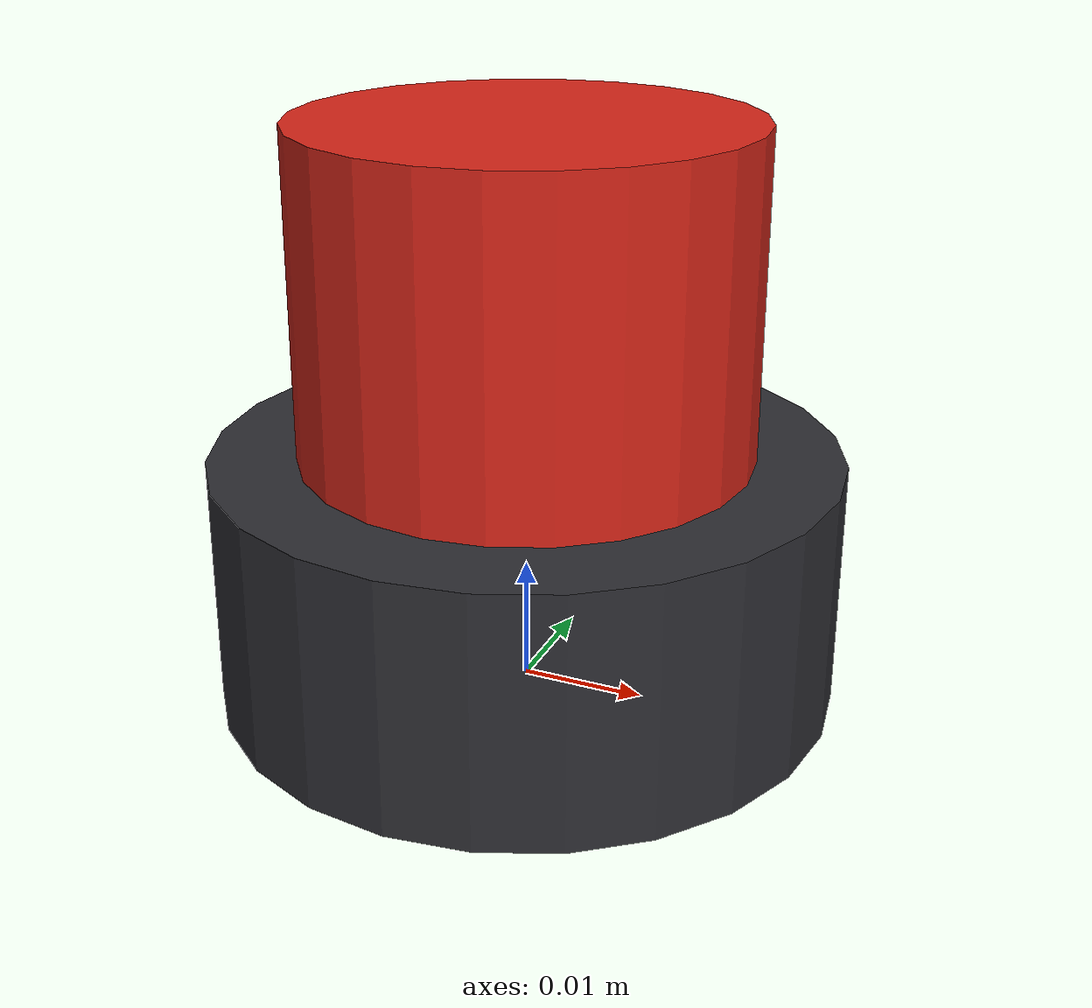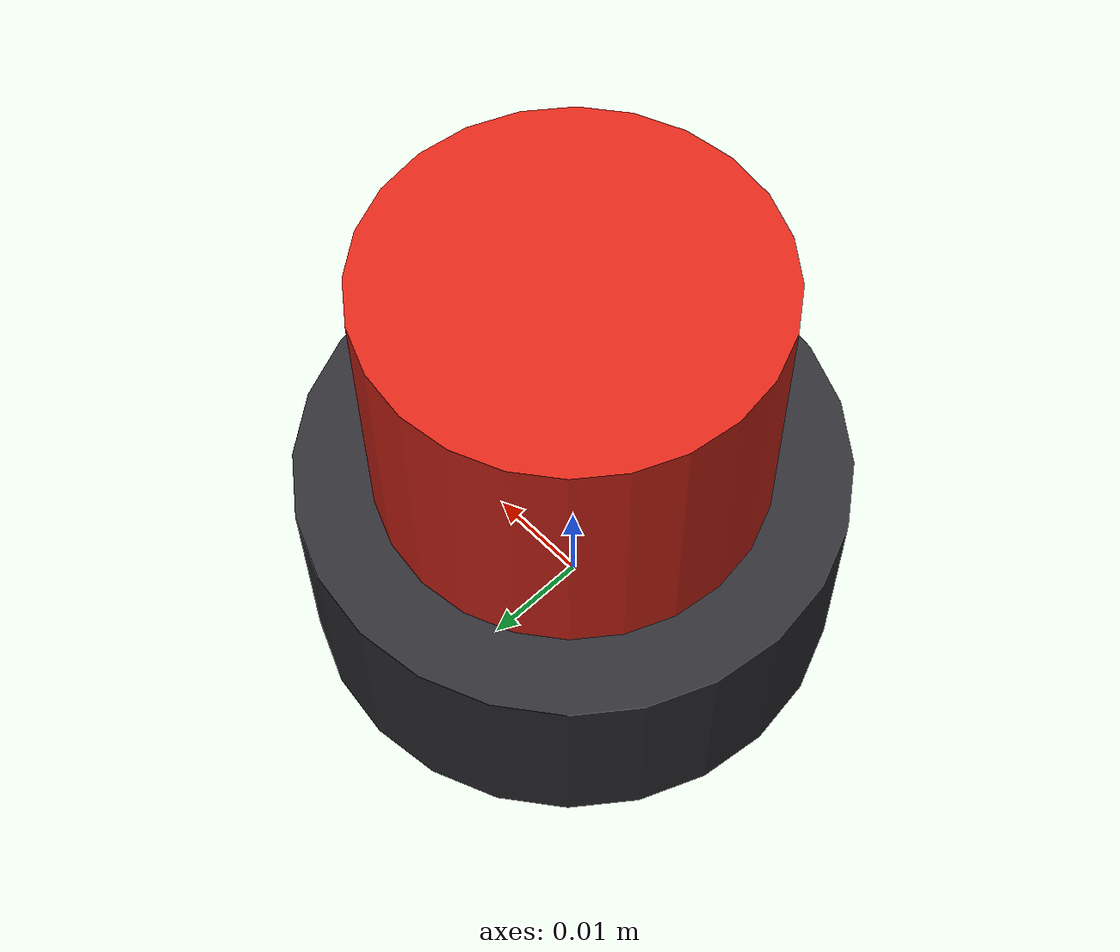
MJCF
<?xml version='1.0' encoding='utf-8'?>
<mujoco model="stop_quantity1_2">
  <worldbody>
    <body name="seq_24">
      <geom name="seq_24_base" type="cylinder" pos="0 0 0.01" size="0.025 0.01" rgba="0.18 0.18 0.20 1" />
      <geom name="seq_24_button" type="cylinder" pos="0 0 0.028" size="0.018 0.018" rgba="0.85 0.15 0.10 1" />
    </body>
  </worldbody>
</mujoco>
